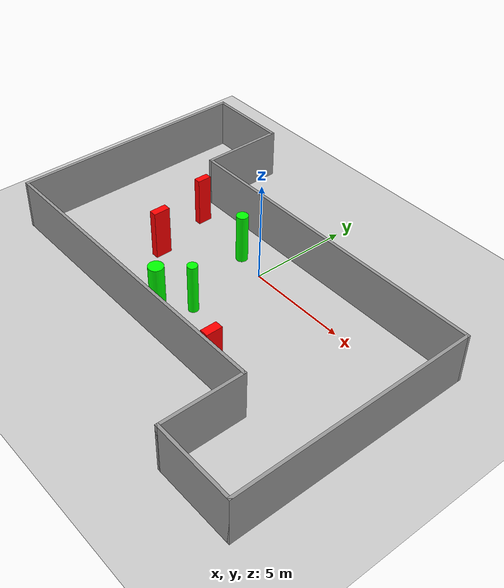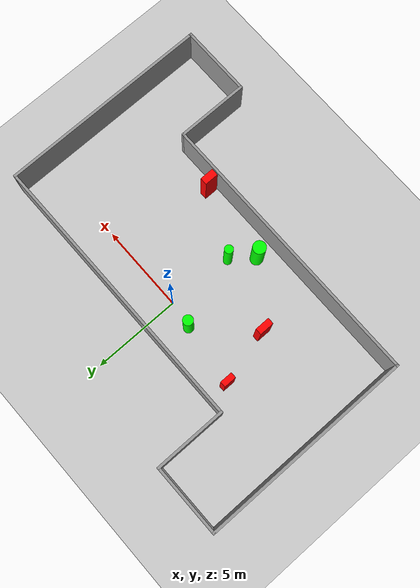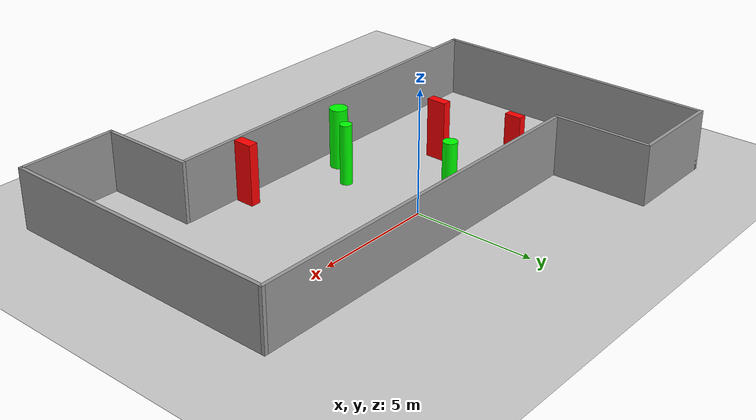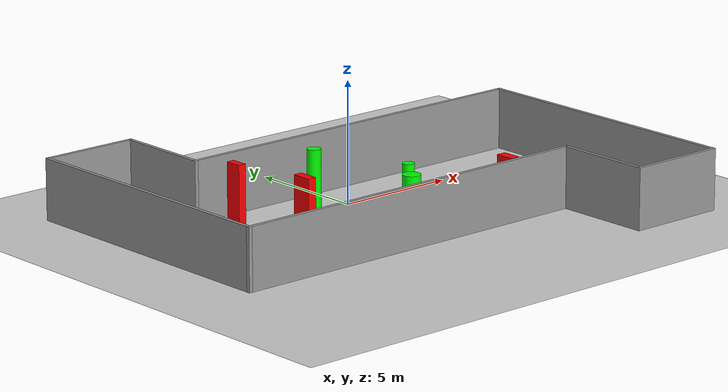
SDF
<sdf version="1.7">
 <world name="default">
  <light name="sun" type="directional">
   <pose>0 0 10 0 -0 0</pose>
   <diffuse>0.8 0.8 0.8 1</diffuse>
   <specular>0.2 0.2 0.2 1</specular>
   <attenuation>
    <range>1000</range>
    <constant>0.9</constant>
    <linear>0.01</linear>
    <quadratic>0.001</quadratic>
   </attenuation>
   <direction>-0.5 0.1 -0.9</direction>
   <spot><inner_angle>0</inner_angle><outer_angle>0</outer_angle><falloff>0</falloff></spot>
  </light>
  <model name="ground_plane">
   <static>1</static>
   <link name="link">
    <collision name="collision">
     <geometry><plane><normal>0 0 1</normal><size>100 100</size></plane></geometry>
     <surface>
      <contact><collide_bitmask>65535</collide_bitmask></contact>
      <friction><ode><mu>100</mu><mu2>50</mu2></ode></friction>
     </surface>
    </collision>
    <visual name="visual">
     <cast_shadows>0</cast_shadows>
     <geometry><plane><normal>0 0 1</normal><size>100 100</size></plane></geometry>
     <material>
      <script><uri>file://media/materials/scripts/gazebo.material</uri><name>Gazebo/Grey</name></script>
     </material>
    </visual>
   </link>
  </model>
  <gravity>0 0 -9.8</gravity>
  <magnetic_field>6e-06 2.3e-05 -4.2e-05</magnetic_field>
  <atmosphere type="adiabatic"/>
  <physics type="ode">
   <max_step_size>0.001</max_step_size>
   <real_time_factor>1</real_time_factor>
   <real_time_update_rate>1000</real_time_update_rate>
  </physics>
  <scene><ambient>0.4 0.4 0.4 1</ambient><background>0.7 0.7 0.7 1</background><shadows>1</shadows></scene>
  <spherical_coordinates>
   <surface_model>EARTH_WGS84</surface_model>
   <latitude_deg>0</latitude_deg>
   <longitude_deg>0</longitude_deg>
   <elevation>0</elevation>
   <heading_deg>0</heading_deg>
  </spherical_coordinates>
  <model name="my_base_walls">
   <link name="Wall_13">
    <collision name="Wall_13_Collision">
     <geometry><box><size>12.15 0.15 2.5</size></box></geometry>
     <pose>0 0 1.25 0 -0 0</pose>
    </collision>
    <visual name="Wall_13_Visual">
     <pose>0 0 1.25 0 -0 0</pose>
     <geometry><box><size>12.15 0.15 2.5</size></box></geometry>
     <material>
      <script><uri>file://media/materials/scripts/gazebo.material</uri><name>Gazebo/Grey</name></script>
      <ambient>1 1 1 1</ambient>
     </material>
     <meta><layer>0</layer></meta>
    </visual>
    <pose>10 -2 0 0 -0 1.5708</pose>
   </link>
   <link name="Wall_15">
    <collision name="Wall_15_Collision">
     <geometry><box><size>16.15 0.15 2.5</size></box></geometry>
     <pose>0 0 1.25 0 -0 0</pose>
    </collision>
    <visual name="Wall_15_Visual">
     <pose>0 0 1.25 0 -0 0</pose>
     <geometry><box><size>16.15 0.15 2.5</size></box></geometry>
     <material>
      <script><uri>file://media/materials/scripts/gazebo.material</uri><name>Gazebo/Grey</name></script>
      <ambient>1 1 1 1</ambient>
     </material>
     <meta><layer>0</layer></meta>
    </visual>
    <pose>2 4 0 0 -0 3.14159</pose>
   </link>
   <link name="Wall_17">
    <collision name="Wall_17_Collision">
     <geometry><box><size>4.15 0.15 2.5</size></box></geometry>
     <pose>0 0 1.25 0 -0 0</pose>
    </collision>
    <visual name="Wall_17_Visual">
     <pose>0 0 1.25 0 -0 0</pose>
     <geometry><box><size>4.15 0.15 2.5</size></box></geometry>
     <material>
      <script><uri>file://media/materials/scripts/gazebo.material</uri><name>Gazebo/Grey</name></script>
      <ambient>1 1 1 1</ambient>
     </material>
     <meta><layer>0</layer></meta>
    </visual>
    <pose>6 -6 0 0 -0 -1.5708</pose>
   </link>
   <link name="Wall_19">
    <collision name="Wall_19_Collision">
     <geometry><box><size>12.15 0.15 2.5</size></box></geometry>
     <pose>0 0 1.25 0 -0 0</pose>
    </collision>
    <visual name="Wall_19_Visual">
     <pose>0 0 1.25 0 -0 0</pose>
     <geometry><box><size>12.15 0.15 2.5</size></box></geometry>
     <material>
      <script><uri>file://media/materials/scripts/gazebo.material</uri><name>Gazebo/Grey</name></script>
      <ambient>1 1 1 1</ambient>
     </material>
     <meta><layer>0</layer></meta>
    </visual>
    <pose>-10 2 0 0 -0 1.5708</pose>
   </link>
   <link name="Wall_21">
    <collision name="Wall_21_Collision">
     <geometry><box><size>4.15 0.15 2.5</size></box></geometry>
     <pose>0 0 1.25 0 -0 0</pose>
    </collision>
    <visual name="Wall_21_Visual">
     <pose>0 0 1.25 0 -0 0</pose>
     <geometry><box><size>4.15 0.15 2.5</size></box></geometry>
     <material>
      <script><uri>file://media/materials/scripts/gazebo.material</uri><name>Gazebo/Grey</name></script>
      <ambient>1 1 1 1</ambient>
     </material>
     <meta><layer>0</layer></meta>
    </visual>
    <pose>-8 8 0 0 -0 0</pose>
   </link>
   <link name="Wall_23">
    <collision name="Wall_23_Collision">
     <geometry><box><size>4.15 0.15 2.5</size></box></geometry>
     <pose>0 0 1.25 0 -0 0</pose>
    </collision>
    <visual name="Wall_23_Visual">
     <pose>0 0 1.25 0 -0 0</pose>
     <geometry><box><size>4.15 0.15 2.5</size></box></geometry>
     <material>
      <script><uri>file://media/materials/scripts/gazebo.material</uri><name>Gazebo/Grey</name></script>
      <ambient>1 1 1 1</ambient>
     </material>
     <meta><layer>0</layer></meta>
    </visual>
    <pose>-6 6 0 0 -0 -1.5708</pose>
   </link>
   <link name="Wall_25">
    <collision name="Wall_25_Collision">
     <geometry><box><size>4.15 0.15 2.5</size></box></geometry>
     <pose>0 0 1.25 0 -0 0</pose>
    </collision>
    <visual name="Wall_25_Visual">
     <pose>0 0 1.25 0 -0 0</pose>
     <geometry><box><size>4.15 0.15 2.5</size></box></geometry>
     <material>
      <script><uri>file://media/materials/scripts/gazebo.material</uri><name>Gazebo/Grey</name></script>
      <ambient>1 1 1 1</ambient>
     </material>
     <meta><layer>0</layer></meta>
    </visual>
    <pose>8 -8 0 0 -0 0</pose>
   </link>
   <link name="Wall_9">
    <collision name="Wall_9_Collision">
     <geometry><box><size>16.15 0.15 2.5</size></box></geometry>
     <pose>0 0 1.25 0 -0 0</pose>
    </collision>
    <visual name="Wall_9_Visual">
     <pose>0 0 1.25 0 -0 0</pose>
     <geometry><box><size>16.15 0.15 2.5</size></box></geometry>
     <material>
      <script><uri>file://media/materials/scripts/gazebo.material</uri><name>Gazebo/Grey</name></script>
      <ambient>1 1 1 1</ambient>
     </material>
     <meta><layer>0</layer></meta>
    </visual>
    <pose>-2 -4 0 0 -0 3.14159</pose>
   </link>
   <static>1</static>
   <pose>-0 -2 0 0 -0 0</pose>
  </model>
  <model name="cylinder1">
   <static>1</static>
   <link name="link">
    <inertial>
     <mass>1</mass>
     <inertia><ixx>0.5</ixx><ixy>0</ixy><ixz>0</ixz><iyy>0.5</iyy><iyz>0</iyz><izz>1</izz></inertia>
    </inertial>
    <collision name="collision">
     <geometry><cylinder><radius>0.3642725325811187</radius><length>2.5</length></cylinder></geometry>
    </collision>
    <visual name="visual">
     <geometry><cylinder><radius>0.3642725325811187</radius><length>2.5</length></cylinder></geometry>
     <material>
      <ambient>0 1 0 1</ambient>
      <diffuse>0 1 0 1</diffuse>
      <specular>0.1 0.1 0.1 1</specular>
      <emissive>0 0 0 0</emissive>
     </material>
    </visual>
   </link>
   <pose>-1.1080189813695895 -4.916727805651433 1.25 0 0 0</pose>
  </model>
  <model name="cylinder2">
   <static>1</static>
   <link name="link">
    <inertial>
     <mass>1</mass>
     <inertia><ixx>0.5</ixx><ixy>0</ixy><ixz>0</ixz><iyy>0.5</iyy><iyz>0</iyz><izz>1</izz></inertia>
    </inertial>
    <collision name="collision">
     <geometry><cylinder><radius>0.2857188619113947</radius><length>2.5</length></cylinder></geometry>
    </collision>
    <visual name="visual">
     <geometry><cylinder><radius>0.2857188619113947</radius><length>2.5</length></cylinder></geometry>
     <material>
      <ambient>0 1 0 1</ambient>
      <diffuse>0 1 0 1</diffuse>
      <specular>0.1 0.1 0.1 1</specular>
      <emissive>0 0 0 0</emissive>
     </material>
    </visual>
   </link>
   <pose>-1.5333771427654632 0.24534358842147075 1.25 0 0 0</pose>
  </model>
  <model name="cylinder3">
   <static>1</static>
   <link name="link">
    <inertial>
     <mass>1</mass>
     <inertia><ixx>0.5</ixx><ixy>0</ixy><ixz>0</ixz><iyy>0.5</iyy><iyz>0</iyz><izz>1</izz></inertia>
    </inertial>
    <collision name="collision">
     <geometry><cylinder><radius>0.24339893628693227</radius><length>2.5</length></cylinder></geometry>
    </collision>
    <visual name="visual">
     <geometry><cylinder><radius>0.24339893628693227</radius><length>2.5</length></cylinder></geometry>
     <material>
      <ambient>0 1 0 1</ambient>
      <diffuse>0 1 0 1</diffuse>
      <specular>0.1 0.1 0.1 1</specular>
      <emissive>0 0 0 0</emissive>
     </material>
    </visual>
   </link>
   <pose>-0.1625942690860933 -3.691508618562721 1.25 0 0 0</pose>
  </model>
  <model name="box1">
   <static>1</static>
   <link name="link">
    <inertial>
     <mass>1</mass>
     <inertia><ixx>0.083</ixx><ixy>0</ixy><ixz>0</ixz><iyy>0.083</iyy><iyz>0</iyz><izz>0.083</izz></inertia>
    </inertial>
    <collision name="collision">
     <geometry><box><size>0.32734955153783774 0.7079593508089392 2.5</size></box></geometry>
    </collision>
    <visual name="visual">
     <geometry><box><size>0.32734955153783774 0.7079593508089392 2.5</size></box></geometry>
     <material>
      <ambient>1 0 0 1</ambient>
      <diffuse>1 0 0 1</diffuse>
      <specular>0.1 0.1 0.1 1</specular>
      <emissive>0 0 0 0</emissive>
     </material>
    </visual>
    <sensor name="my_contact" type="contact">
     <contact><collision>box_collision</collision><topic>__default_topic__</topic></contact>
    </sensor>
   </link>
   <pose>-5.047941198406022 0.7034287705145221 1.25 0 0 0</pose>
  </model>
  <model name="box2">
   <static>1</static>
   <link name="link">
    <inertial>
     <mass>1</mass>
     <inertia><ixx>0.083</ixx><ixy>0</ixy><ixz>0</ixz><iyy>0.083</iyy><iyz>0</iyz><izz>0.083</izz></inertia>
    </inertial>
    <collision name="collision">
     <geometry><box><size>0.40727935804907234 0.7896945407712125 2.5</size></box></geometry>
    </collision>
    <visual name="visual">
     <geometry><box><size>0.40727935804907234 0.7896945407712125 2.5</size></box></geometry>
     <material>
      <ambient>1 0 0 1</ambient>
      <diffuse>1 0 0 1</diffuse>
      <specular>0.1 0.1 0.1 1</specular>
      <emissive>0 0 0 0</emissive>
     </material>
    </visual>
    <sensor name="my_contact" type="contact">
     <contact><collision>box_collision</collision><topic>__default_topic__</topic></contact>
    </sensor>
   </link>
   <pose>3.3813436128395526 -5.476879927595214 1.25 0 0 0</pose>
  </model>
  <model name="box3">
   <static>1</static>
   <link name="link">
    <inertial>
     <mass>1</mass>
     <inertia><ixx>0.083</ixx><ixy>0</ixy><ixz>0</ixz><iyy>0.083</iyy><iyz>0</iyz><izz>0.083</izz></inertia>
    </inertial>
    <collision name="collision">
     <geometry><box><size>0.36512189635251907 0.8334802655867286 2.5</size></box></geometry>
    </collision>
    <visual name="visual">
     <geometry><box><size>0.36512189635251907 0.8334802655867286 2.5</size></box></geometry>
     <material>
      <ambient>1 0 0 1</ambient>
      <diffuse>1 0 0 1</diffuse>
      <specular>0.1 0.1 0.1 1</specular>
      <emissive>0 0 0 0</emissive>
     </material>
    </visual>
    <sensor name="my_contact" type="contact">
     <contact><collision>box_collision</collision><topic>__default_topic__</topic></contact>
    </sensor>
   </link>
   <pose>-4.2638730360755694 -2.4055415499556467 1.25 0 0 0</pose>
  </model>
 </world>
</sdf>
